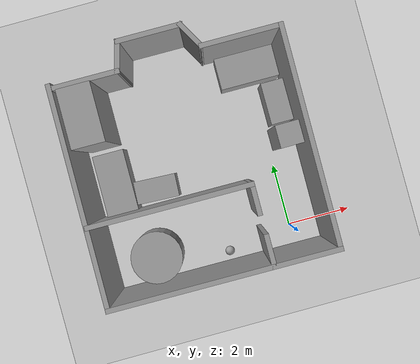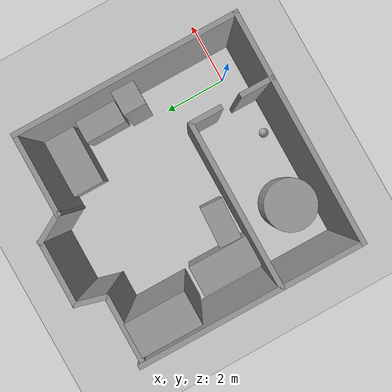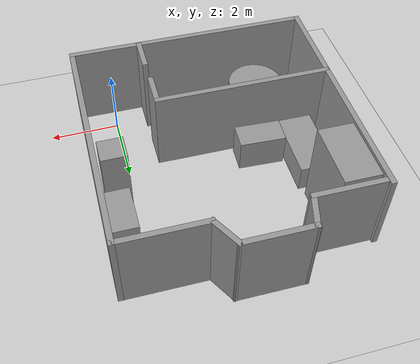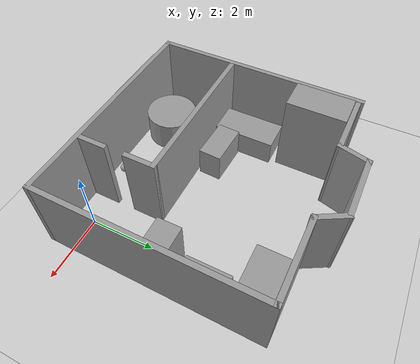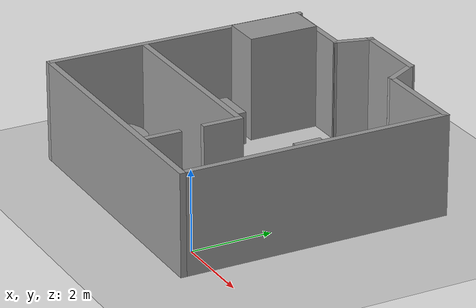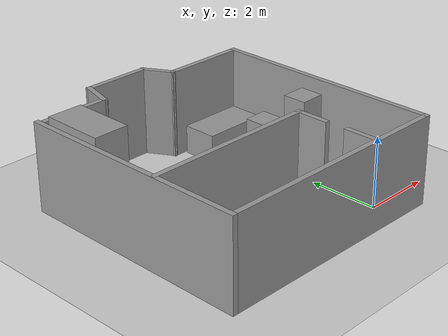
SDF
<sdf version="1.6">
 <world name="default">
  <light name="sun" type="directional">
   <pose>0 0 10 0 -0 0</pose>
   <diffuse>0.8 0.8 0.8 1</diffuse>
   <specular>0.2 0.2 0.2 1</specular>
   <attenuation>
    <range>1000</range>
    <constant>0.9</constant>
    <linear>0.01</linear>
    <quadratic>0.001</quadratic>
   </attenuation>
   <direction>-0.5 0.1 -0.9</direction>
  </light>
  <model name="ground_plane">
   <static>1</static>
   <link name="link">
    <collision name="collision">
     <geometry><plane><normal>0 0 1</normal><size>100 100</size></plane></geometry>
     <surface>
      <contact><collide_bitmask>65535</collide_bitmask></contact>
      <friction><ode><mu>100</mu><mu2>50</mu2></ode></friction>
     </surface>
    </collision>
    <visual name="visual">
     <cast_shadows>0</cast_shadows>
     <geometry><plane><normal>0 0 1</normal><size>100 100</size></plane></geometry>
     <material>
      <script><uri>file://media/materials/scripts/gazebo.material</uri><name>Gazebo/Grey</name></script>
     </material>
    </visual>
   </link>
  </model>
  <gravity>0 0 -9.8</gravity>
  <magnetic_field>6e-06 2.3e-05 -4.2e-05</magnetic_field>
  <atmosphere type="adiabatic"/>
  <physics name="default_physics" default="0" type="ode">
   <max_step_size>0.001</max_step_size>
   <real_time_factor>1</real_time_factor>
   <real_time_update_rate>1000</real_time_update_rate>
  </physics>
  <scene><ambient>0.4 0.4 0.4 1</ambient><background>0.7 0.7 0.7 1</background><shadows>1</shadows></scene>
  <audio><device>default</device></audio>
  <spherical_coordinates>
   <surface_model>EARTH_WGS84</surface_model>
   <latitude_deg>0</latitude_deg>
   <longitude_deg>0</longitude_deg>
   <elevation>0</elevation>
   <heading_deg>0</heading_deg>
  </spherical_coordinates>
  <model name="room_1">
   <pose>-2.43349 2.99516 0 0 -0 3.13327</pose>
   <link name="Wall_16">
    <collision name="Wall_16_Collision">
     <geometry><box><size>7 0.15 2.5</size></box></geometry>
     <pose>0 0 1.25 0 -0 0</pose>
    </collision>
    <visual name="Wall_16_Visual">
     <pose>0 0 1.25 0 -0 0</pose>
     <geometry><box><size>7 0.15 2.5</size></box></geometry>
     <material>
      <script><uri>file://media/materials/scripts/gazebo.material</uri><name>Gazebo/Grey</name></script>
      <ambient>1 1 1 1</ambient>
     </material>
     <meta><layer>0</layer></meta>
    </visual>
    <pose>0 3.68179 0 0 -0 3.14159</pose>
   </link>
   <link name="Wall_18">
    <collision name="Wall_18_Collision">
     <geometry><box><size>1 0.15 2.5</size></box></geometry>
     <pose>0 0 1.25 0 -0 0</pose>
    </collision>
    <visual name="Wall_18_Visual">
     <pose>0 0 1.25 0 -0 0</pose>
     <geometry><box><size>1 0.15 2.5</size></box></geometry>
     <material>
      <script><uri>file://media/materials/scripts/gazebo.material</uri><name>Gazebo/Grey</name></script>
      <ambient>1 1 1 1</ambient>
     </material>
     <meta><layer>0</layer></meta>
    </visual>
    <pose>-1.47398 3.22813 0 0 -0 -1.5708</pose>
   </link>
   <link name="Wall_20">
    <collision name="Wall_20_Collision">
     <geometry><box><size>1 0.15 2.5</size></box></geometry>
     <pose>0 0 1.25 0 -0 0</pose>
    </collision>
    <visual name="Wall_20_Visual">
     <pose>0 0 1.25 0 -0 0</pose>
     <geometry><box><size>1 0.15 2.5</size></box></geometry>
     <material>
      <script><uri>file://media/materials/scripts/gazebo.material</uri><name>Gazebo/Grey</name></script>
      <ambient>1 1 1 1</ambient>
     </material>
     <meta><layer>0</layer></meta>
    </visual>
    <pose>-1.45387 1.67938 0 0 -0 -1.5708</pose>
   </link>
   <link name="Wall_23">
    <collision name="Wall_23_Collision">
     <geometry><box><size>5 0.15 2.5</size></box></geometry>
     <pose>0 0 1.25 0 -0 0</pose>
    </collision>
    <visual name="Wall_23_Visual">
     <pose>0 0 1.25 0 -0 0</pose>
     <geometry><box><size>5 0.15 2.5</size></box></geometry>
     <material>
      <script><uri>file://media/materials/scripts/gazebo.material</uri><name>Gazebo/Grey</name></script>
      <ambient>1 1 1 1</ambient>
     </material>
     <meta><layer>0</layer></meta>
    </visual>
    <pose>0.97113 1.25438 0 0 -0 0</pose>
   </link>
   <link name="Wall_25">
    <collision name="Wall_25_Collision">
     <geometry><box><size>6.75 0.15 2.5</size></box></geometry>
     <pose>0 0 1.25 0 -0 0</pose>
    </collision>
    <visual name="Wall_25_Visual">
     <pose>0 0 1.25 0 -0 0</pose>
     <geometry><box><size>6.75 0.15 2.5</size></box></geometry>
     <material>
      <script><uri>file://media/materials/scripts/gazebo.material</uri><name>Gazebo/Grey</name></script>
      <ambient>1 1 1 1</ambient>
     </material>
     <meta><layer>0</layer></meta>
    </visual>
    <pose>-3.425 0.381787 0 0 -0 -1.5708</pose>
   </link>
   <link name="Wall_26">
    <collision name="Wall_26_Collision">
     <geometry><box><size>2.5 0.15 2.5</size></box></geometry>
     <pose>0 0 1.25 0 -0 0</pose>
    </collision>
    <visual name="Wall_26_Visual">
     <pose>0 0 1.25 0 -0 0</pose>
     <geometry><box><size>2.5 0.15 2.5</size></box></geometry>
     <material>
      <script><uri>file://media/materials/scripts/gazebo.material</uri><name>Gazebo/Grey</name></script>
      <ambient>1 1 1 1</ambient>
     </material>
     <meta><layer>0</layer></meta>
    </visual>
    <pose>-2.25 -2.91821 0 0 -0 0</pose>
   </link>
   <link name="Wall_27">
    <collision name="Wall_27_Collision">
     <geometry><box><size>1 0.15 2.5</size></box></geometry>
     <pose>0 0 1.25 0 -0 0</pose>
    </collision>
    <visual name="Wall_27_Visual">
     <pose>0 0 1.25 0 -0 0</pose>
     <geometry><box><size>1 0.15 2.5</size></box></geometry>
     <material>
      <script><uri>file://media/materials/scripts/gazebo.material</uri><name>Gazebo/Grey</name></script>
      <ambient>1 1 1 1</ambient>
     </material>
     <meta><layer>0</layer></meta>
    </visual>
    <pose>-0.8625 -3.28627 0 0 -0 -1.0472</pose>
   </link>
   <link name="Wall_28">
    <collision name="Wall_28_Collision">
     <geometry><box><size>2 0.15 2.5</size></box></geometry>
     <pose>0 0 1.25 0 -0 0</pose>
    </collision>
    <visual name="Wall_28_Visual">
     <pose>0 0 1.25 0 -0 0</pose>
     <geometry><box><size>2 0.15 2.5</size></box></geometry>
     <material>
      <script><uri>file://media/materials/scripts/gazebo.material</uri><name>Gazebo/Grey</name></script>
      <ambient>1 1 1 1</ambient>
     </material>
     <meta><layer>0</layer></meta>
    </visual>
    <pose>0.275 -3.65434 0 0 -0 0</pose>
   </link>
   <link name="Wall_29">
    <collision name="Wall_29_Collision">
     <geometry><box><size>1 0.15 2.5</size></box></geometry>
     <pose>0 0 1.25 0 -0 0</pose>
    </collision>
    <visual name="Wall_29_Visual">
     <pose>0 0 1.25 0 -0 0</pose>
     <geometry><box><size>1 0.15 2.5</size></box></geometry>
     <material>
      <script><uri>file://media/materials/scripts/gazebo.material</uri><name>Gazebo/Grey</name></script>
      <ambient>1 1 1 1</ambient>
     </material>
     <meta><layer>0</layer></meta>
    </visual>
    <pose>1.31 -3.24382 0 0 -0 1.309</pose>
   </link>
   <link name="Wall_30">
    <collision name="Wall_30_Collision">
     <geometry><box><size>2 0.15 2.5</size></box></geometry>
     <pose>0 0 1.25 0 -0 0</pose>
    </collision>
    <visual name="Wall_30_Visual">
     <pose>0 0 1.25 0 -0 0</pose>
     <geometry><box><size>2 0.15 2.5</size></box></geometry>
     <material>
      <script><uri>file://media/materials/scripts/gazebo.material</uri><name>Gazebo/Grey</name></script>
      <ambient>1 1 1 1</ambient>
     </material>
     <meta><layer>0</layer></meta>
    </visual>
    <pose>2.345 -2.8333 0 0 -0 0</pose>
   </link>
   <link name="Wall_33">
    <collision name="Wall_33_Collision">
     <geometry><box><size>6.75 0.15 2.5</size></box></geometry>
     <pose>0 0 1.25 0 -0 0</pose>
    </collision>
    <visual name="Wall_33_Visual">
     <pose>0 0 1.25 0 -0 0</pose>
     <geometry><box><size>6.75 0.15 2.5</size></box></geometry>
     <material>
      <script><uri>file://media/materials/scripts/gazebo.material</uri><name>Gazebo/Grey</name></script>
      <ambient>1 1 1 1</ambient>
     </material>
     <meta><layer>0</layer></meta>
    </visual>
    <pose>3.425 0.381787 0 0 -0 -1.5708</pose>
   </link>
   <static>1</static>
  </model>
  <model name="unit_box">
   <pose>-5.14375 4.88474 1.30911 1e-06 0 -0.008549</pose>
   <link name="link">
    <inertial>
     <mass>1</mass>
     <inertia>
      <ixx>0.166667</ixx>
      <ixy>0</ixy>
      <ixz>0</ixz>
      <iyy>0.166667</iyy>
      <iyz>0</iyz>
      <izz>0.166667</izz>
     </inertia>
    </inertial>
    <collision name="collision"><geometry><box><size>1 1.77288 2.61821</size></box></geometry></collision>
    <visual name="visual">
     <geometry><box><size>1 1.77288 2.61821</size></box></geometry>
     <material>
      <script><name>Gazebo/Grey</name><uri>file://media/materials/scripts/gazebo.material</uri></script>
     </material>
    </visual>
   </link>
  </model>
  <model name="unit_box_clone">
   <pose>-5.03234 2.81757 0.412583 0 1e-05 -0.008317</pose>
   <link name="link">
    <inertial>
     <mass>1</mass>
     <inertia>
      <ixx>0.166667</ixx>
      <ixy>0</ixy>
      <ixz>0</ixz>
      <iyy>0.166667</iyy>
      <iyz>0</iyz>
      <izz>0.166667</izz>
     </inertia>
    </inertial>
    <collision name="collision"><geometry><box><size>1 1.96032 0.825176</size></box></geometry></collision>
    <visual name="visual">
     <geometry><box><size>1 1.96032 0.825176</size></box></geometry>
     <material>
      <script><name>Gazebo/Grey</name><uri>file://media/materials/scripts/gazebo.material</uri></script>
     </material>
    </visual>
   </link>
  </model>
  <model name="unit_box_clone_clone">
   <pose>-0.072287 5.24897 0.412584 -0 -1e-05 1.56315</pose>
   <link name="link">
    <inertial>
     <mass>1</mass>
     <inertia>
      <ixx>0.166667</ixx>
      <ixy>0</ixy>
      <ixz>0</ixz>
      <iyy>0.166667</iyy>
      <iyz>0</iyz>
      <izz>0.166667</izz>
     </inertia>
    </inertial>
    <collision name="collision"><geometry><box><size>1 1.88072 0.825177</size></box></geometry></collision>
    <visual name="visual">
     <geometry><box><size>1 1.88072 0.825177</size></box></geometry>
     <material>
      <script><name>Gazebo/Grey</name><uri>file://media/materials/scripts/gazebo.material</uri></script>
     </material>
    </visual>
   </link>
  </model>
  <model name="unit_box_0">
   <pose>0.545946 3.9366 0.499995 8e-06 -0 -1.5e-05</pose>
   <link name="link">
    <inertial>
     <mass>1</mass>
     <inertia>
      <ixx>0.166667</ixx>
      <ixy>0</ixy>
      <ixz>0</ixz>
      <iyy>0.166667</iyy>
      <iyz>0</iyz>
      <izz>0.166667</izz>
     </inertia>
    </inertial>
    <collision name="collision"><geometry><box><size>0.717207 1.32662 1</size></box></geometry></collision>
    <visual name="visual">
     <geometry><box><size>0.717207 1.32662 1</size></box></geometry>
     <material>
      <script><name>Gazebo/Grey</name><uri>file://media/materials/scripts/gazebo.material</uri></script>
     </material>
    </visual>
   </link>
  </model>
  <model name="unit_box_0_clone">
   <pose>-3.81743 2.2996 0.499996 3e-06 -5e-06 1.52196</pose>
   <link name="link">
    <inertial>
     <mass>1</mass>
     <inertia>
      <ixx>0.166667</ixx>
      <ixy>0</ixy>
      <ixz>0</ixz>
      <iyy>0.166667</iyy>
      <iyz>0</iyz>
      <izz>0.166667</izz>
     </inertia>
    </inertial>
    <collision name="collision"><geometry><box><size>0.717208 1.32662 1</size></box></geometry></collision>
    <visual name="visual">
     <geometry><box><size>0.717208 1.32662 1</size></box></geometry>
     <material>
      <script><name>Gazebo/Grey</name><uri>file://media/materials/scripts/gazebo.material</uri></script>
     </material>
    </visual>
   </link>
  </model>
  <model name="unit_box_0_clone_0">
   <pose>0.478292 2.82956 1.07408 3e-06 1e-06 0.000147</pose>
   <link name="link">
    <inertial>
     <mass>1</mass>
     <inertia>
      <ixx>0.166667</ixx>
      <ixy>0</ixy>
      <ixz>0</ixz>
      <iyy>0.166667</iyy>
      <iyz>0</iyz>
      <izz>0.166667</izz>
     </inertia>
    </inertial>
    <collision name="collision"><geometry><box><size>0.717208 0.688571 2.14817</size></box></geometry></collision>
    <visual name="visual">
     <geometry><box><size>0.717208 0.688571 2.14817</size></box></geometry>
     <material>
      <script><name>Gazebo/Grey</name><uri>file://media/materials/scripts/gazebo.material</uri></script>
     </material>
    </visual>
   </link>
  </model>
  <model name="unit_cylinder">
   <pose>-4.37177 0.229409 0.5 0 -0 0</pose>
   <link name="link">
    <inertial>
     <mass>1</mass>
     <inertia><ixx>0.145833</ixx><ixy>0</ixy><ixz>0</ixz><iyy>0.145833</iyy><iyz>0</iyz><izz>0.125</izz></inertia>
    </inertial>
    <collision name="collision">
     <geometry><cylinder><radius>0.818405</radius><length>1</length></cylinder></geometry>
    </collision>
    <visual name="visual">
     <geometry><cylinder><radius>0.818405</radius><length>1</length></cylinder></geometry>
     <material>
      <script><name>Gazebo/Grey</name><uri>file://media/materials/scripts/gazebo.material</uri></script>
     </material>
    </visual>
   </link>
  </model>
  <model name="Sphere_radius_15cm">
   <link name="link">
    <inertial>
     <mass>1</mass>
     <inertia><ixx>0.1</ixx><ixy>0</ixy><ixz>0</ixz><iyy>0.1</iyy><iyz>0</iyz><izz>0.1</izz></inertia>
    </inertial>
    <visual name="visual">
     <geometry><sphere><radius>0.15</radius></sphere></geometry>
     <material>
      <script><name>Gazebo/Grey</name><uri>file://media/materials/scripts/gazebo.material</uri></script>
      <shader type="vertex"><normal_map>__default__</normal_map></shader>
      <ambient>0.3 0.3 0.3 1</ambient>
      <diffuse>0.7 0.7 0.7 1</diffuse>
      <specular>0.01 0.01 0.01 1</specular>
      <emissive>0 0 0 1</emissive>
     </material>
    </visual>
    <collision name="collision">
     <geometry><sphere><radius>0.15</radius></sphere></geometry>
     <surface>
      <friction>
       <ode><mu>1</mu><mu2>1</mu2><fdir1>0 0 0</fdir1><slip1>0</slip1><slip2>0</slip2></ode>
       <torsional>
        <coefficient>1</coefficient>
        <patch_radius>0</patch_radius>
        <surface_radius>0</surface_radius>
        <use_patch_radius>1</use_patch_radius>
        <ode><slip>0</slip></ode>
       </torsional>
      </friction>
      <bounce><restitution_coefficient>0</restitution_coefficient><threshold>1e+06</threshold></bounce>
      <contact>
       <collide_without_contact>0</collide_without_contact>
       <collide_without_contact_bitmask>1</collide_without_contact_bitmask>
       <collide_bitmask>1</collide_bitmask>
       <ode>
        <soft_cfm>0</soft_cfm>
        <soft_erp>0.2</soft_erp>
        <kp>1e+13</kp>
        <kd>1</kd>
        <max_vel>0.01</max_vel>
        <min_depth>0</min_depth>
       </ode>
       <bullet>
        <split_impulse>1</split_impulse>
        <split_impulse_penetration_threshold>-0.01</split_impulse_penetration_threshold>
        <soft_cfm>0</soft_cfm>
        <soft_erp>0.2</soft_erp>
        <kp>1e+13</kp>
        <kd>1</kd>
       </bullet>
      </contact>
     </surface>
    </collision>
   </link>
   <static>0</static>
   <pose>-2.10963 -0.297082 0.15 0 -0 0</pose>
  </model>
 </world>
</sdf>
